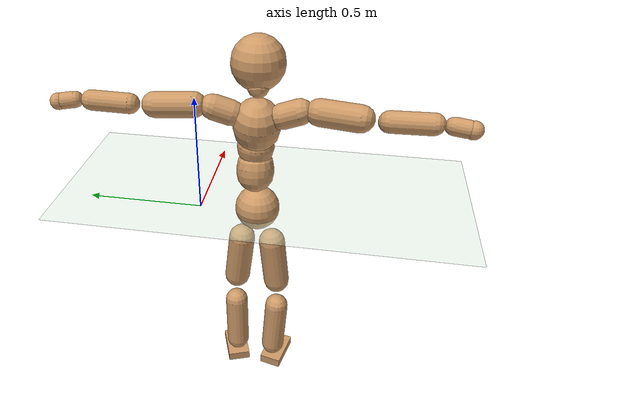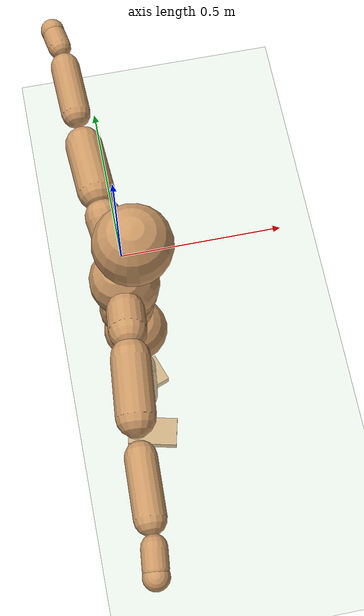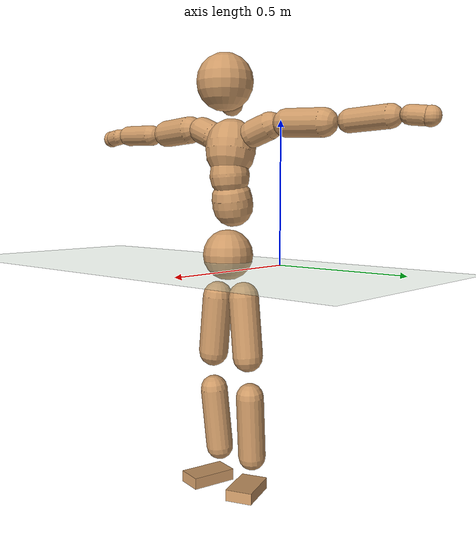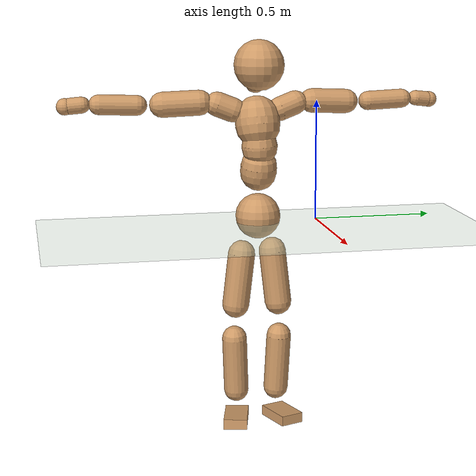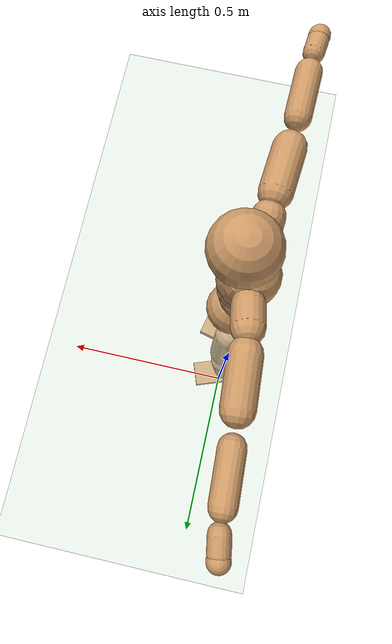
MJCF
<mujoco model="humanoid">
  <compiler coordinate="local"/>
  <default>
    <joint damping="0.0" armature="0.01" stiffness="0.0" limited="true"/>
    <geom conaffinity="1" condim="3" contype="7" margin="0.001" rgba="0.8 0.6 .4 1"/>
  </default>
  <asset>
    <texture type="skybox" builtin="gradient" rgb1=".4 .5 .6" rgb2="0 0 0" width="100" height="100"/>
    <texture builtin="flat" height="1278" mark="cross" markrgb="1 1 1" name="texgeom" random="0.01" rgb1="0.8 0.6 0.4" rgb2="0.8 0.6 0.4" type="cube" width="127"/>
    <texture builtin="checker" height="100" name="texplane" rgb1="0 0 0" rgb2="0.8 0.8 0.8" type="2d" width="100"/>
    <material name="MatPlane" reflectance="0.5" shininess="1" specular="1" texrepeat="60 60" texture="texplane"/>
    <material name="geom" texture="texgeom" texuniform="true"/>
  </asset>
  <worldbody>
    <light cutoff="100" diffuse="1 1 1" dir="-0 0 -1.3" directional="true" exponent="1" pos="0 0 1.3" specular=".1 .1 .1"/>
    <geom conaffinity="1" condim="3" name="floor" pos="0 0 0" rgba="0.8 0.9 0.8 1" size="100 100 .2" type="plane" material="MatPlane"/>
    <body name="Pelvis" pos="0.001 -0.2491 0.0224">
      <freejoint name="Pelvis"/>
      <geom type="sphere" contype="1" conaffinity="1" density="500" size="0.0945" pos="0.0000 0.0000 0.0000" name="Pelvis"/>
      <body name="L_Hip" pos="-0.0167 0.057 -0.0819">
        <joint name="L_Hip_x" type="hinge" pos="0 0 0" axis="1 0 0" stiffness="800" damping="80" armature="0.02" range="-180.0000 180.0000"/>
        <joint name="L_Hip_y" type="hinge" pos="0 0 0" axis="0 1 0" stiffness="800" damping="80" armature="0.02" range="-180.0000 180.0000"/>
        <joint name="L_Hip_z" type="hinge" pos="0 0 0" axis="0 0 1" stiffness="800" damping="80" armature="0.02" range="-180.0000 180.0000"/>
        <geom type="capsule" contype="1" conaffinity="1" density="500" fromto="0.0014 0.0082 -0.0744 0.0055 0.0328 -0.2975" size="0.057" name="L_Hip"/>
        <body name="L_Knee" pos="0.0068 0.0409 -0.3719">
          <joint name="L_Knee_x" type="hinge" pos="0 0 0" axis="1 0 0" stiffness="800" damping="80" armature="0.02" range="-180.0000 180.0000"/>
          <joint name="L_Knee_y" type="hinge" pos="0 0 0" axis="0 1 0" stiffness="800" damping="80" armature="0.02" range="-180.0000 180.0000"/>
          <joint name="L_Knee_z" type="hinge" pos="0 0 0" axis="0 0 1" stiffness="800" damping="80" armature="0.02" range="-180.0000 180.0000"/>
          <geom type="capsule" contype="1" conaffinity="1" density="500" fromto="-0.0073 -0.0027 -0.0803 -0.0292 -0.0109 -0.3211" size="0.0522" name="L_Knee"/>
          <body name="L_Ankle" pos="-0.0365 -0.0137 -0.4014">
            <joint name="L_Ankle_x" type="hinge" pos="0 0 0" axis="1 0 0" stiffness="800" damping="80" armature="0.02" range="-180.0000 180.0000"/>
            <joint name="L_Ankle_y" type="hinge" pos="0 0 0" axis="0 1 0" stiffness="800" damping="80" armature="0.02" range="-180.0000 180.0000"/>
            <joint name="L_Ankle_z" type="hinge" pos="0 0 0" axis="0 0 1" stiffness="800" damping="80" armature="0.02" range="-180.0000 180.0000"/>
            <geom type="box" contype="1" conaffinity="1" density="500" pos="0.0589 0.0211 -0.0289" size="0.0826 0.051 0.0213" quat="0.9853 0.0000 0.0000 0.1709" name="L_Ankle"/>
            <body name="L_Toe" pos="0.1178 0.0421 -0.0578">
              <joint name="L_Toe_x" type="hinge" pos="0 0 0" axis="1 0 0" stiffness="500" damping="50" armature="0.02" range="-180.0000 180.0000"/>
              <joint name="L_Toe_y" type="hinge" pos="0 0 0" axis="0 1 0" stiffness="500" damping="50" armature="0.02" range="-180.0000 180.0000"/>
              <joint name="L_Toe_z" type="hinge" pos="0 0 0" axis="0 0 1" stiffness="500" damping="50" armature="0.02" range="-180.0000 180.0000"/>
              <geom type="box" contype="1" conaffinity="1" density="500" pos="0.0000 0.0000 0.0296" size="0.001 0.0024 0.0011" quat="0.9845 0.0000 0.0000 0.1755" name="L_Toe"/>
            </body>
          </body>
        </body>
      </body>
      <body name="R_Hip" pos="-0.0131 -0.0588 -0.0903">
        <joint name="R_Hip_x" type="hinge" pos="0 0 0" axis="1 0 0" stiffness="800" damping="80" armature="0.02" range="-180.0000 180.0000"/>
        <joint name="R_Hip_y" type="hinge" pos="0 0 0" axis="0 1 0" stiffness="800" damping="80" armature="0.02" range="-180.0000 180.0000"/>
        <joint name="R_Hip_z" type="hinge" pos="0 0 0" axis="0 0 1" stiffness="800" damping="80" armature="0.02" range="-180.0000 180.0000"/>
        <geom type="capsule" contype="1" conaffinity="1" density="500" fromto="-0.0007 -0.0086 -0.0737 -0.0027 -0.0342 -0.2947" size="0.0569" name="R_Hip"/>
        <body name="R_Knee" pos="-0.0033 -0.0428 -0.3684">
          <joint name="R_Knee_x" type="hinge" pos="0 0 0" axis="1 0 0" stiffness="800" damping="80" armature="0.02" range="-180.0000 180.0000"/>
          <joint name="R_Knee_y" type="hinge" pos="0 0 0" axis="0 1 0" stiffness="800" damping="80" armature="0.02" range="-180.0000 180.0000"/>
          <joint name="R_Knee_z" type="hinge" pos="0 0 0" axis="0 0 1" stiffness="800" damping="80" armature="0.02" range="-180.0000 180.0000"/>
          <geom type="capsule" contype="1" conaffinity="1" density="500" fromto="-0.0066 0.0036 -0.0791 -0.0265 0.0142 -0.3165" size="0.0529" name="R_Knee"/>
          <body name="R_Ankle" pos="-0.0331 0.0178 -0.3957">
            <joint name="R_Ankle_x" type="hinge" pos="0 0 0" axis="1 0 0" stiffness="800" damping="80" armature="0.02" range="-180.0000 180.0000"/>
            <joint name="R_Ankle_y" type="hinge" pos="0 0 0" axis="0 1 0" stiffness="800" damping="80" armature="0.02" range="-180.0000 180.0000"/>
            <joint name="R_Ankle_z" type="hinge" pos="0 0 0" axis="0 0 1" stiffness="800" damping="80" armature="0.02" range="-180.0000 180.0000"/>
            <geom type="box" contype="1" conaffinity="1" density="500" pos="0.0628 -0.0149 -0.0307" size="0.0876 0.0496 0.0218" quat="0.9932 0.0000 0.0000 -0.1161" name="R_Ankle"/>
            <body name="R_Toe" pos="0.1257 -0.0298 -0.0615">
              <joint name="R_Toe_x" type="hinge" pos="0 0 0" axis="1 0 0" stiffness="500" damping="50" armature="0.02" range="-180.0000 180.0000"/>
              <joint name="R_Toe_y" type="hinge" pos="0 0 0" axis="0 1 0" stiffness="500" damping="50" armature="0.02" range="-180.0000 180.0000"/>
              <joint name="R_Toe_z" type="hinge" pos="0 0 0" axis="0 0 1" stiffness="500" damping="50" armature="0.02" range="-180.0000 180.0000"/>
              <geom type="box" contype="1" conaffinity="1" density="500" pos="0.0000 0.0000 0.0320" size="0.0011 0.0024 0.0012" quat="0.9943 0.0000 0.0000 -0.1069" name="R_Toe"/>
            </body>
          </body>
        </body>
      </body>
      <body name="Torso" pos="-0.0331 0.0041 0.1248">
        <joint name="Torso_x" type="hinge" pos="0 0 0" axis="1 0 0" stiffness="1000" damping="100" armature="0.02" range="-180.0000 180.0000"/>
        <joint name="Torso_y" type="hinge" pos="0 0 0" axis="0 1 0" stiffness="1000" damping="100" armature="0.02" range="-180.0000 180.0000"/>
        <joint name="Torso_z" type="hinge" pos="0 0 0" axis="0 0 1" stiffness="1000" damping="100" armature="0.02" range="-180.0000 180.0000"/>
        <geom type="capsule" contype="1" conaffinity="1" density="500" fromto="0.0182 0.0030 0.0836 0.0121 0.0020 0.0557" size="0.076074" name="Torso"/>
        <body name="Spine" pos="0.0304 0.0049 0.1394">
          <joint name="Spine_x" type="hinge" pos="0 0 0" axis="1 0 0" stiffness="1000" damping="100" armature="0.02" range="-180.0000 180.0000"/>
          <joint name="Spine_y" type="hinge" pos="0 0 0" axis="0 1 0" stiffness="1000" damping="100" armature="0.02" range="-180.0000 180.0000"/>
          <joint name="Spine_z" type="hinge" pos="0 0 0" axis="0 0 1" stiffness="1000" damping="100" armature="0.02" range="-180.0000 180.0000"/>
          <geom type="capsule" contype="1" conaffinity="1" density="500" fromto="0.0013 -0.0019 0.0339 0.0008 -0.0013 0.0226" size="0.074214" name="Spine"/>
          <body name="Chest" pos="0.0021 -0.0032 0.0564">
            <joint name="Chest_x" type="hinge" pos="0 0 0" axis="1 0 0" stiffness="1000" damping="100" armature="0.02" range="-180.0000 180.0000"/>
            <joint name="Chest_y" type="hinge" pos="0 0 0" axis="0 1 0" stiffness="1000" damping="100" armature="0.02" range="-180.0000 180.0000"/>
            <joint name="Chest_z" type="hinge" pos="0 0 0" axis="0 0 1" stiffness="1000" damping="100" armature="0.02" range="-180.0000 180.0000"/>
            <geom type="capsule" contype="1" conaffinity="1" density="500" fromto="-0.0180 -0.0054 0.0881 -0.0120 -0.0036 0.0588" size="0.093279" name="Chest"/>
            <body name="Neck" pos="-0.0377 -0.013 0.2142">
              <joint name="Neck_x" type="hinge" pos="0 0 0" axis="1 0 0" stiffness="500" damping="50" armature="0.02" range="-180.0000 180.0000"/>
              <joint name="Neck_y" type="hinge" pos="0 0 0" axis="0 1 0" stiffness="500" damping="50" armature="0.02" range="-180.0000 180.0000"/>
              <joint name="Neck_z" type="hinge" pos="0 0 0" axis="0 0 1" stiffness="500" damping="50" armature="0.02" range="-180.0000 180.0000"/>
              <geom type="capsule" contype="1" conaffinity="1" density="500" fromto="0.0108 0.0018 0.0188 0.0432 0.0072 0.0750" size="0.042036" name="Neck"/>
              <body name="Head" pos="0.054 0.009 0.0938">
                <joint name="Head_x" type="hinge" pos="0 0 0" axis="1 0 0" stiffness="500" damping="50" armature="0.02" range="-180.0000 180.0000"/>
                <joint name="Head_y" type="hinge" pos="0 0 0" axis="0 1 0" stiffness="500" damping="50" armature="0.02" range="-180.0000 180.0000"/>
                <joint name="Head_z" type="hinge" pos="0 0 0" axis="0 0 1" stiffness="500" damping="50" armature="0.02" range="-180.0000 180.0000"/>
                <geom type="sphere" contype="1" conaffinity="1" density="500" size="0.1046" pos="0.0000 0.0000 0.0000" name="Head"/>
              </body>
            </body>
            <body name="L_Thorax" pos="-0.0253 0.0678 0.113">
              <joint name="L_Thorax_x" type="hinge" pos="0 0 0" axis="1 0 0" stiffness="500" damping="50" armature="0.02" range="-180.0000 180.0000"/>
              <joint name="L_Thorax_y" type="hinge" pos="0 0 0" axis="0 1 0" stiffness="500" damping="50" armature="0.02" range="-180.0000 180.0000"/>
              <joint name="L_Thorax_z" type="hinge" pos="0 0 0" axis="0 0 1" stiffness="500" damping="50" armature="0.02" range="-180.0000 180.0000"/>
              <geom type="capsule" contype="1" conaffinity="1" density="500" fromto="-0.0036 0.0233 0.0083 -0.0144 0.0933 0.0333" size="0.0499" name="L_Thorax"/>
              <body name="L_Shoulder" pos="-0.018 0.1167 0.0416">
                <joint name="L_Shoulder_x" type="hinge" pos="0 0 0" axis="1 0 0" stiffness="500" damping="50" armature="0.02" range="-720.0000 720.0000"/>
                <joint name="L_Shoulder_y" type="hinge" pos="0 0 0" axis="0 1 0" stiffness="500" damping="50" armature="0.02" range="-720.0000 720.0000"/>
                <joint name="L_Shoulder_z" type="hinge" pos="0 0 0" axis="0 0 1" stiffness="500" damping="50" armature="0.02" range="-720.0000 720.0000"/>
                <geom type="capsule" contype="1" conaffinity="1" density="500" fromto="-0.0032 0.0497 -0.0024 -0.0128 0.1990 -0.0095" size="0.0507" name="L_Shoulder"/>
                <body name="L_Elbow" pos="-0.0161 0.2487 -0.0118">
                  <joint name="L_Elbow_x" type="hinge" pos="0 0 0" axis="1 0 0" stiffness="500" damping="50" armature="0.02" range="-720.0000 720.0000"/>
                  <joint name="L_Elbow_y" type="hinge" pos="0 0 0" axis="0 1 0" stiffness="500" damping="50" armature="0.02" range="-720.0000 720.0000"/>
                  <joint name="L_Elbow_z" type="hinge" pos="0 0 0" axis="0 0 1" stiffness="500" damping="50" armature="0.02" range="-720.0000 720.0000"/>
                  <geom type="capsule" contype="1" conaffinity="1" density="500" fromto="-0.0021 0.0497 0.0018 -0.0083 0.1987 0.0073" size="0.0401" name="L_Elbow"/>
                  <body name="L_Wrist" pos="-0.0104 0.2483 0.0092">
                    <joint name="L_Wrist_x" type="hinge" pos="0 0 0" axis="1 0 0" stiffness="300" damping="30" armature="0.02" range="-180.0000 180.0000"/>
                    <joint name="L_Wrist_y" type="hinge" pos="0 0 0" axis="0 1 0" stiffness="300" damping="30" armature="0.02" range="-180.0000 180.0000"/>
                    <joint name="L_Wrist_z" type="hinge" pos="0 0 0" axis="0 0 1" stiffness="300" damping="30" armature="0.02" range="-180.0000 180.0000"/>
                    <geom type="capsule" contype="1" conaffinity="1" density="500" fromto="-0.0029 0.0161 -0.0019 -0.0114 0.0644 -0.0077" size="0.0321" name="L_Wrist"/>
                    <body name="L_Hand" pos="-0.0143 0.0805 -0.0096">
                      <joint name="L_Hand_x" type="hinge" pos="0 0 0" axis="1 0 0" stiffness="300" damping="30" armature="0.02" range="-180.0000 180.0000"/>
                      <joint name="L_Hand_y" type="hinge" pos="0 0 0" axis="0 1 0" stiffness="300" damping="30" armature="0.02" range="-180.0000 180.0000"/>
                      <joint name="L_Hand_z" type="hinge" pos="0 0 0" axis="0 0 1" stiffness="300" damping="30" armature="0.02" range="-180.0000 180.0000"/>
                      <geom type="sphere" contype="1" conaffinity="1" density="500" size="0.0332" pos="0.0000 0.0000 0.0000" name="L_Hand"/>
                    </body>
                  </body>
                </body>
              </body>
            </body>
            <body name="R_Thorax" pos="-0.027 -0.0821 0.1135">
              <joint name="R_Thorax_x" type="hinge" pos="0 0 0" axis="1 0 0" stiffness="500" damping="50" armature="0.02" range="-180.0000 180.0000"/>
              <joint name="R_Thorax_y" type="hinge" pos="0 0 0" axis="0 1 0" stiffness="500" damping="50" armature="0.02" range="-180.0000 180.0000"/>
              <joint name="R_Thorax_z" type="hinge" pos="0 0 0" axis="0 0 1" stiffness="500" damping="50" armature="0.02" range="-180.0000 180.0000"/>
              <geom type="capsule" contype="1" conaffinity="1" density="500" fromto="-0.0015 -0.0220 0.0086 -0.0059 -0.0878 0.0344" size="0.0507" name="R_Thorax"/>
              <body name="R_Shoulder" pos="-0.0074 -0.1098 0.043">
                <joint name="R_Shoulder_x" type="hinge" pos="0 0 0" axis="1 0 0" stiffness="500" damping="50" armature="0.02" range="-720.0000 720.0000"/>
                <joint name="R_Shoulder_y" type="hinge" pos="0 0 0" axis="0 1 0" stiffness="500" damping="50" armature="0.02" range="-720.0000 720.0000"/>
                <joint name="R_Shoulder_z" type="hinge" pos="0 0 0" axis="0 0 1" stiffness="500" damping="50" armature="0.02" range="-720.0000 720.0000"/>
                <geom type="capsule" contype="1" conaffinity="1" density="500" fromto="-0.0046 -0.0507 -0.0022 -0.0183 -0.2027 -0.0089" size="0.0524" name="R_Shoulder"/>
                <body name="R_Elbow" pos="-0.0229 -0.2533 -0.0111">
                  <joint name="R_Elbow_x" type="hinge" pos="0 0 0" axis="1 0 0" stiffness="500" damping="50" armature="0.02" range="-720.0000 720.0000"/>
                  <joint name="R_Elbow_y" type="hinge" pos="0 0 0" axis="0 1 0" stiffness="500" damping="50" armature="0.02" range="-720.0000 720.0000"/>
                  <joint name="R_Elbow_z" type="hinge" pos="0 0 0" axis="0 0 1" stiffness="500" damping="50" armature="0.02" range="-720.0000 720.0000"/>
                  <geom type="capsule" contype="1" conaffinity="1" density="500" fromto="-0.0016 -0.0515 0.0017 -0.0064 -0.2059 0.0070" size="0.0417" name="R_Elbow"/>
                  <body name="R_Wrist" pos="-0.008 -0.2574 0.0087">
                    <joint name="R_Wrist_x" type="hinge" pos="0 0 0" axis="1 0 0" stiffness="300" damping="30" armature="0.02" range="-180.0000 180.0000"/>
                    <joint name="R_Wrist_y" type="hinge" pos="0 0 0" axis="0 1 0" stiffness="300" damping="30" armature="0.02" range="-180.0000 180.0000"/>
                    <joint name="R_Wrist_z" type="hinge" pos="0 0 0" axis="0 0 1" stiffness="300" damping="30" armature="0.02" range="-180.0000 180.0000"/>
                    <geom type="capsule" contype="1" conaffinity="1" density="500" fromto="-0.0019 -0.0170 -0.0016 -0.0074 -0.0679 -0.0064" size="0.0337" name="R_Wrist"/>
                    <body name="R_Hand" pos="-0.0093 -0.0849 -0.008">
                      <joint name="R_Hand_x" type="hinge" pos="0 0 0" axis="1 0 0" stiffness="300" damping="30" armature="0.02" range="-180.0000 180.0000"/>
                      <joint name="R_Hand_y" type="hinge" pos="0 0 0" axis="0 1 0" stiffness="300" damping="30" armature="0.02" range="-180.0000 180.0000"/>
                      <joint name="R_Hand_z" type="hinge" pos="0 0 0" axis="0 0 1" stiffness="300" damping="30" armature="0.02" range="-180.0000 180.0000"/>
                      <geom type="sphere" contype="1" conaffinity="1" density="500" size="0.0347" pos="0.0000 0.0000 0.0000" name="R_Hand"/>
                    </body>
                  </body>
                </body>
              </body>
            </body>
          </body>
        </body>
      </body>
    </body>
  </worldbody>
  <actuator>
    <motor name="L_Hip_x" joint="L_Hip_x" gear="500"/>
    <motor name="L_Hip_y" joint="L_Hip_y" gear="500"/>
    <motor name="L_Hip_z" joint="L_Hip_z" gear="500"/>
    <motor name="L_Knee_x" joint="L_Knee_x" gear="500"/>
    <motor name="L_Knee_y" joint="L_Knee_y" gear="500"/>
    <motor name="L_Knee_z" joint="L_Knee_z" gear="500"/>
    <motor name="L_Ankle_x" joint="L_Ankle_x" gear="500"/>
    <motor name="L_Ankle_y" joint="L_Ankle_y" gear="500"/>
    <motor name="L_Ankle_z" joint="L_Ankle_z" gear="500"/>
    <motor name="L_Toe_x" joint="L_Toe_x" gear="500"/>
    <motor name="L_Toe_y" joint="L_Toe_y" gear="500"/>
    <motor name="L_Toe_z" joint="L_Toe_z" gear="500"/>
    <motor name="R_Hip_x" joint="R_Hip_x" gear="500"/>
    <motor name="R_Hip_y" joint="R_Hip_y" gear="500"/>
    <motor name="R_Hip_z" joint="R_Hip_z" gear="500"/>
    <motor name="R_Knee_x" joint="R_Knee_x" gear="500"/>
    <motor name="R_Knee_y" joint="R_Knee_y" gear="500"/>
    <motor name="R_Knee_z" joint="R_Knee_z" gear="500"/>
    <motor name="R_Ankle_x" joint="R_Ankle_x" gear="500"/>
    <motor name="R_Ankle_y" joint="R_Ankle_y" gear="500"/>
    <motor name="R_Ankle_z" joint="R_Ankle_z" gear="500"/>
    <motor name="R_Toe_x" joint="R_Toe_x" gear="500"/>
    <motor name="R_Toe_y" joint="R_Toe_y" gear="500"/>
    <motor name="R_Toe_z" joint="R_Toe_z" gear="500"/>
    <motor name="Torso_x" joint="Torso_x" gear="500"/>
    <motor name="Torso_y" joint="Torso_y" gear="500"/>
    <motor name="Torso_z" joint="Torso_z" gear="500"/>
    <motor name="Spine_x" joint="Spine_x" gear="500"/>
    <motor name="Spine_y" joint="Spine_y" gear="500"/>
    <motor name="Spine_z" joint="Spine_z" gear="500"/>
    <motor name="Chest_x" joint="Chest_x" gear="500"/>
    <motor name="Chest_y" joint="Chest_y" gear="500"/>
    <motor name="Chest_z" joint="Chest_z" gear="500"/>
    <motor name="Neck_x" joint="Neck_x" gear="500"/>
    <motor name="Neck_y" joint="Neck_y" gear="500"/>
    <motor name="Neck_z" joint="Neck_z" gear="500"/>
    <motor name="Head_x" joint="Head_x" gear="500"/>
    <motor name="Head_y" joint="Head_y" gear="500"/>
    <motor name="Head_z" joint="Head_z" gear="500"/>
    <motor name="L_Thorax_x" joint="L_Thorax_x" gear="500"/>
    <motor name="L_Thorax_y" joint="L_Thorax_y" gear="500"/>
    <motor name="L_Thorax_z" joint="L_Thorax_z" gear="500"/>
    <motor name="L_Shoulder_x" joint="L_Shoulder_x" gear="500"/>
    <motor name="L_Shoulder_y" joint="L_Shoulder_y" gear="500"/>
    <motor name="L_Shoulder_z" joint="L_Shoulder_z" gear="500"/>
    <motor name="L_Elbow_x" joint="L_Elbow_x" gear="500"/>
    <motor name="L_Elbow_y" joint="L_Elbow_y" gear="500"/>
    <motor name="L_Elbow_z" joint="L_Elbow_z" gear="500"/>
    <motor name="L_Wrist_x" joint="L_Wrist_x" gear="500"/>
    <motor name="L_Wrist_y" joint="L_Wrist_y" gear="500"/>
    <motor name="L_Wrist_z" joint="L_Wrist_z" gear="500"/>
    <motor name="L_Hand_x" joint="L_Hand_x" gear="500"/>
    <motor name="L_Hand_y" joint="L_Hand_y" gear="500"/>
    <motor name="L_Hand_z" joint="L_Hand_z" gear="500"/>
    <motor name="R_Thorax_x" joint="R_Thorax_x" gear="500"/>
    <motor name="R_Thorax_y" joint="R_Thorax_y" gear="500"/>
    <motor name="R_Thorax_z" joint="R_Thorax_z" gear="500"/>
    <motor name="R_Shoulder_x" joint="R_Shoulder_x" gear="500"/>
    <motor name="R_Shoulder_y" joint="R_Shoulder_y" gear="500"/>
    <motor name="R_Shoulder_z" joint="R_Shoulder_z" gear="500"/>
    <motor name="R_Elbow_x" joint="R_Elbow_x" gear="500"/>
    <motor name="R_Elbow_y" joint="R_Elbow_y" gear="500"/>
    <motor name="R_Elbow_z" joint="R_Elbow_z" gear="500"/>
    <motor name="R_Wrist_x" joint="R_Wrist_x" gear="500"/>
    <motor name="R_Wrist_y" joint="R_Wrist_y" gear="500"/>
    <motor name="R_Wrist_z" joint="R_Wrist_z" gear="500"/>
    <motor name="R_Hand_x" joint="R_Hand_x" gear="500"/>
    <motor name="R_Hand_y" joint="R_Hand_y" gear="500"/>
    <motor name="R_Hand_z" joint="R_Hand_z" gear="500"/>
  </actuator>
  <contact>
    <exclude body1="Torso" body2="Chest"/>
    <exclude body1="Head" body2="Chest"/>
    <exclude body1="R_Knee" body2="R_Toe"/>
    <exclude body1="R_Knee" body2="L_Ankle"/>
    <exclude body1="R_Knee" body2="L_Toe"/>
    <exclude body1="L_Knee" body2="L_Toe"/>
    <exclude body1="L_Knee" body2="R_Ankle"/>
    <exclude body1="L_Knee" body2="R_Toe"/>
    <exclude body1="L_Shoulder" body2="Chest"/>
    <exclude body1="R_Shoulder" body2="Chest"/>
  </contact>
  <sensor/>
  <size njmax="700" nconmax="700"/>
</mujoco>
